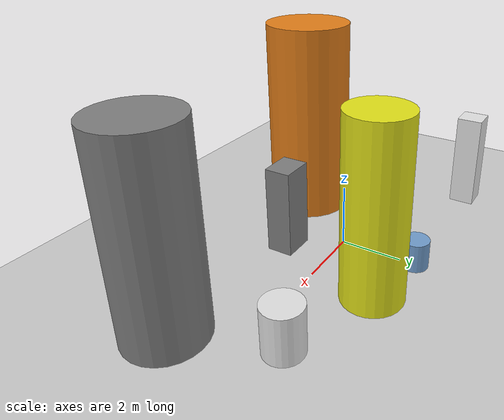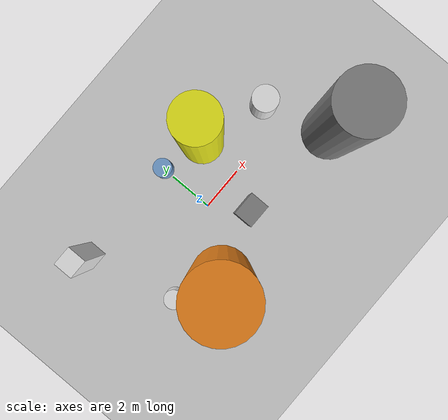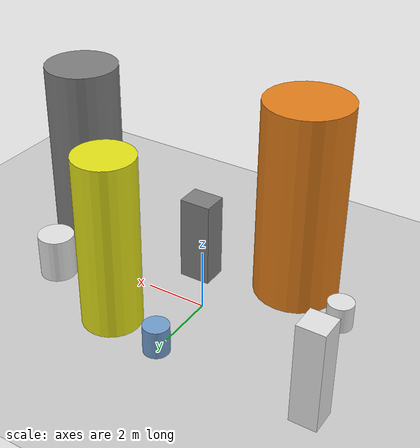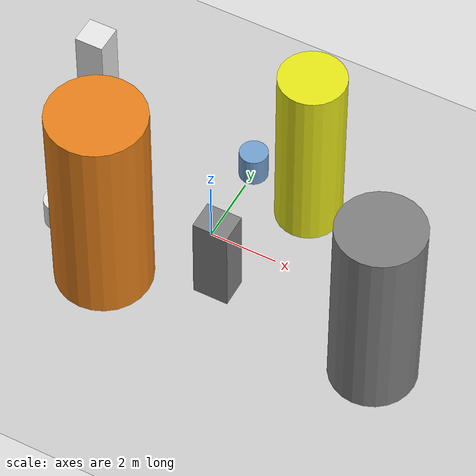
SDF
<?xml version='1.0'?>
<sdf version='1.6'>
  <world name='routeA_rl_v1__support_expansion__rl_val__mixed_3d_low_density_route__000164'>
    <!-- Sun light -->
    <light name='sun' type='directional'>
      <cast_shadows>1</cast_shadows>
      <pose>0 0 10 0 0 0</pose>
      <diffuse>0.8 0.8 0.8 1</diffuse>
      <specular>0.2 0.2 0.2 1</specular>
      <attenuation>
        <range>1000</range>
        <constant>0.9</constant>
        <linear>0.01</linear>
        <quadratic>0.001</quadratic>
      </attenuation>
      <direction>-0.5 0.1 -0.9</direction>
    </light>

    <!-- Ground plane -->
    <model name='ground_plane'>
      <static>1</static>
      <link name='link'>
        <collision name='collision'>
          <geometry>
            <plane>
              <normal>0 0 1</normal>
              <size>100 100</size>
            </plane>
          </geometry>
          <surface>
            <contact>
              <collide_bitmask>65535</collide_bitmask>
              <ode/>
            </contact>
            <friction>
              <ode>
                <mu>100</mu>
                <mu2>50</mu2>
              </ode>
              <torsional><ode/></torsional>
            </friction>
            <bounce/>
          </surface>
          <max_contacts>10</max_contacts>
        </collision>
        <visual name='visual'>
          <cast_shadows>0</cast_shadows>
          <geometry>
            <plane>
              <normal>0 0 1</normal>
              <size>100 100</size>
            </plane>
          </geometry>
          <material>
            <script>
              <uri>file://media/materials/scripts/gazebo.material</uri>
              <n>Gazebo/Grey</n>
            </script>
          </material>
        </visual>
      </link>
    </model>

    <!-- Environment -->
    <magnetic_field>6e-06 2.3e-05 -4.2e-05</magnetic_field>
    <atmosphere type='adiabatic'/>
    <physics name='default_physics' default='0' type='ode'>
      <gravity>0 0 -9.8</gravity>
      <max_step_size>0.004</max_step_size>
      <real_time_factor>1</real_time_factor>
      <real_time_update_rate>250</real_time_update_rate>
    </physics>
    <scene>
      <ambient>0.4 0.4 0.4 1</ambient>
      <background>0.7 0.7 0.7 1</background>
      <shadows>1</shadows>
    </scene>
    <wind/>
    <spherical_coordinates>
      <surface_model>EARTH_WGS84</surface_model>
      <latitude_deg>0</latitude_deg>
      <longitude_deg>0</longitude_deg>
      <elevation>0</elevation>
      <heading_deg>0</heading_deg>
    </spherical_coordinates>

    <!-- ============ OBSTACLES (8) ============ -->
    <model name='low_obs_0'>
      <static>1</static>
      <link name='link'>
        <visual name='visual'>
          <geometry>
            <cylinder>
              <radius>0.4259</radius>
              <length>0.8729</length>
            </cylinder>
          </geometry>
          <material>
            <script>
              <n>Gazebo/White</n>
              <uri>file://media/materials/scripts/gazebo.material</uri>
            </script>
            <ambient>0.9 0.9 0.9 1</ambient>
          </material>
        </visual>
        <collision name='collision'>
          <geometry>
            <cylinder>
              <radius>0.4259</radius>
              <length>0.8729</length>
            </cylinder>
          </geometry>
          <max_contacts>10</max_contacts>
          <surface>
            <contact><ode/></contact>
            <bounce/>
            <friction>
              <ode><mu>1</mu><mu2>1</mu2></ode>
              <torsional><ode/></torsional>
            </friction>
          </surface>
        </collision>
      </link>
      <pose>-4.0000 -1.5000 0.4364 0 0 0.0000</pose>
    </model>

    <model name='low_obs_1'>
      <static>1</static>
      <link name='link'>
        <visual name='visual'>
          <geometry>
            <cylinder>
              <radius>0.4174</radius>
              <length>0.9349</length>
            </cylinder>
          </geometry>
          <material>
            <script>
              <n>Gazebo/Blue</n>
              <uri>file://media/materials/scripts/gazebo.material</uri>
            </script>
            <ambient>0.447 0.624 0.812 1</ambient>
          </material>
        </visual>
        <collision name='collision'>
          <geometry>
            <cylinder>
              <radius>0.4174</radius>
              <length>0.9349</length>
            </cylinder>
          </geometry>
          <max_contacts>10</max_contacts>
          <surface>
            <contact><ode/></contact>
            <bounce/>
            <friction>
              <ode><mu>1</mu><mu2>1</mu2></ode>
              <torsional><ode/></torsional>
            </friction>
          </surface>
        </collision>
      </link>
      <pose>0.0000 2.5000 0.4674 0 0 0.0000</pose>
    </model>

    <model name='low_obs_2'>
      <static>1</static>
      <link name='link'>
        <visual name='visual'>
          <geometry>
            <cylinder>
              <radius>0.5979</radius>
              <length>1.4723</length>
            </cylinder>
          </geometry>
          <material>
            <script>
              <n>Gazebo/White</n>
              <uri>file://media/materials/scripts/gazebo.material</uri>
            </script>
            <ambient>0.9 0.9 0.9 1</ambient>
          </material>
        </visual>
        <collision name='collision'>
          <geometry>
            <cylinder>
              <radius>0.5979</radius>
              <length>1.4723</length>
            </cylinder>
          </geometry>
          <max_contacts>10</max_contacts>
          <surface>
            <contact><ode/></contact>
            <bounce/>
            <friction>
              <ode><mu>1</mu><mu2>1</mu2></ode>
              <torsional><ode/></torsional>
            </friction>
          </surface>
        </collision>
      </link>
      <pose>5.0000 1.0000 0.7362 0 0 0.0000</pose>
    </model>

    <model name='tall_obs_0'>
      <static>1</static>
      <link name='link'>
        <visual name='visual'>
          <geometry>
            <cylinder>
              <radius>1.3939</radius>
              <length>6.6005</length>
            </cylinder>
          </geometry>
          <material>
            <script>
              <n>Gazebo/Orange</n>
              <uri>file://media/materials/scripts/gazebo.material</uri>
            </script>
            <ambient>0.9 0.5 0.1 1</ambient>
          </material>
        </visual>
        <collision name='collision'>
          <geometry>
            <cylinder>
              <radius>1.3939</radius>
              <length>6.6005</length>
            </cylinder>
          </geometry>
          <max_contacts>10</max_contacts>
          <surface>
            <contact><ode/></contact>
            <bounce/>
            <friction>
              <ode><mu>1</mu><mu2>1</mu2></ode>
              <torsional><ode/></torsional>
            </friction>
          </surface>
        </collision>
      </link>
      <pose>-2.0000 -2.5000 3.3002 0 0 0.0000</pose>
    </model>

    <model name='tall_obs_1'>
      <static>1</static>
      <link name='link'>
        <visual name='visual'>
          <geometry>
            <cylinder>
              <radius>0.9581</radius>
              <length>5.6794</length>
            </cylinder>
          </geometry>
          <material>
            <script>
              <n>Gazebo/Yellow</n>
              <uri>file://media/materials/scripts/gazebo.material</uri>
            </script>
            <ambient>0.9 0.9 0.1 1</ambient>
          </material>
        </visual>
        <collision name='collision'>
          <geometry>
            <cylinder>
              <radius>0.9581</radius>
              <length>5.6794</length>
            </cylinder>
          </geometry>
          <max_contacts>10</max_contacts>
          <surface>
            <contact><ode/></contact>
            <bounce/>
            <friction>
              <ode><mu>1</mu><mu2>1</mu2></ode>
              <torsional><ode/></torsional>
            </friction>
          </surface>
        </collision>
      </link>
      <pose>2.0000 2.0000 2.8397 0 0 0.0000</pose>
    </model>

    <model name='tall_obs_2'>
      <static>1</static>
      <link name='link'>
        <visual name='visual'>
          <geometry>
            <cylinder>
              <radius>1.2314</radius>
              <length>6.0891</length>
            </cylinder>
          </geometry>
          <material>
            <script>
              <n>Gazebo/Grey</n>
              <uri>file://media/materials/scripts/gazebo.material</uri>
            </script>
            <ambient>0.5 0.5 0.5 1</ambient>
          </material>
        </visual>
        <collision name='collision'>
          <geometry>
            <cylinder>
              <radius>1.2314</radius>
              <length>6.0891</length>
            </cylinder>
          </geometry>
          <max_contacts>10</max_contacts>
          <surface>
            <contact><ode/></contact>
            <bounce/>
            <friction>
              <ode><mu>1</mu><mu2>1</mu2></ode>
              <torsional><ode/></torsional>
            </friction>
          </surface>
        </collision>
      </link>
      <pose>6.0000 -2.0000 3.0446 0 0 0.0000</pose>
    </model>

    <model name='med_obs_0'>
      <static>1</static>
      <link name='link'>
        <visual name='visual'>
          <geometry>
            <box>
              <size>0.8493 0.8392 3.2289</size>
            </box>
          </geometry>
          <material>
            <script>
              <n>Gazebo/White</n>
              <uri>file://media/materials/scripts/gazebo.material</uri>
            </script>
            <ambient>0.9 0.9 0.9 1</ambient>
          </material>
        </visual>
        <collision name='collision'>
          <geometry>
            <box>
              <size>0.8493 0.8392 3.2289</size>
            </box>
          </geometry>
          <max_contacts>10</max_contacts>
          <surface>
            <contact><ode/></contact>
            <bounce/>
            <friction>
              <ode><mu>1</mu><mu2>1</mu2></ode>
              <torsional><ode/></torsional>
            </friction>
          </surface>
        </collision>
      </link>
      <pose>-5.0000 2.5000 1.6144 0 0 0.0000</pose>
    </model>

    <model name='med_obs_1'>
      <static>1</static>
      <link name='link'>
        <visual name='visual'>
          <geometry>
            <box>
              <size>1.0408 0.8399 2.8504</size>
            </box>
          </geometry>
          <material>
            <script>
              <n>Gazebo/Grey</n>
              <uri>file://media/materials/scripts/gazebo.material</uri>
            </script>
            <ambient>0.5 0.5 0.5 1</ambient>
          </material>
        </visual>
        <collision name='collision'>
          <geometry>
            <box>
              <size>1.0408 0.8399 2.8504</size>
            </box>
          </geometry>
          <max_contacts>10</max_contacts>
          <surface>
            <contact><ode/></contact>
            <bounce/>
            <friction>
              <ode><mu>1</mu><mu2>1</mu2></ode>
              <torsional><ode/></torsional>
            </friction>
          </surface>
        </collision>
      </link>
      <pose>1.0000 -1.5000 1.4252 0 0 0.0000</pose>
    </model>

    <!-- GUI camera -->
    <gui fullscreen='0'>
      <camera name='user_camera'>
        <pose>-15 0 18 0 0.85 0.15</pose>
        <view_controller>orbit</view_controller>
        <projection_type>perspective</projection_type>
      </camera>
    </gui>
  </world>
</sdf>
